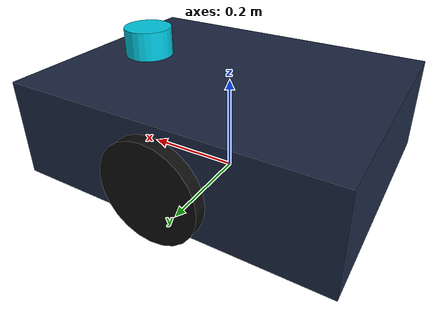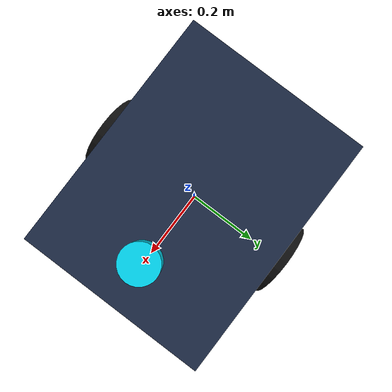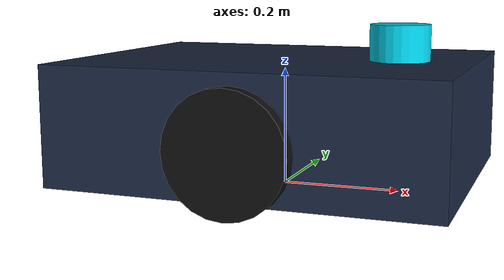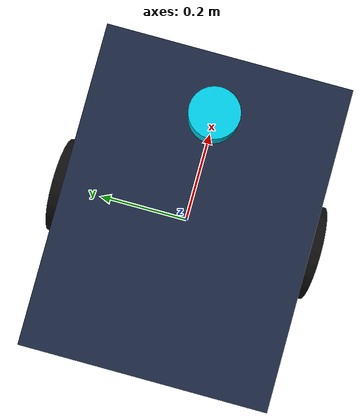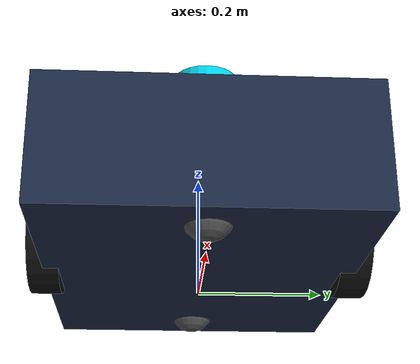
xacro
<?xml version="1.0"?>
<robot xmlns:xacro="http://www.ros.org/wiki/xacro" name="warehouse_amr">

  <xacro:arg name="robot_prefix" default="robot_1" />
  <xacro:property name="prefix" value="$(arg robot_prefix)" />

  <!-- Base footprint -->
  <link name="${prefix}/base_footprint"/>

  <!-- Base link -->
  <link name="${prefix}/base_link">
    <inertial>
      <mass value="25.0"/>
      <origin xyz="0 0 0.12" rpy="0 0 0"/>
      <inertia ixx="0.5" ixy="0" ixz="0" iyy="0.5" iyz="0" izz="0.8"/>
    </inertial>
    <visual>
      <origin xyz="0 0 0.12" rpy="0 0 0"/>
      <geometry>
        <box size="0.65 0.50 0.20"/>
      </geometry>
      <material name="chassis_mat">
        <color rgba="0.1 0.15 0.25 1.0"/>
      </material>
    </visual>
    <collision>
      <origin xyz="0 0 0.12" rpy="0 0 0"/>
      <geometry>
        <box size="0.65 0.50 0.20"/>
      </geometry>
    </collision>
  </link>

  <joint name="${prefix}/base_footprint_joint" type="fixed">
    <parent link="${prefix}/base_footprint"/>
    <child link="${prefix}/base_link"/>
    <origin xyz="0 0 0" rpy="0 0 0"/>
  </joint>

  <!-- Left wheel -->
  <link name="${prefix}/left_wheel">
    <inertial>
      <mass value="2.5"/>
      <origin xyz="0 0 0" rpy="0 0 0"/>
      <inertia ixx="0.01" ixy="0" ixz="0" iyy="0.01" iyz="0" izz="0.01"/>
    </inertial>
    <visual>
      <origin xyz="0 0 0" rpy="1.570796 0 0"/>
      <geometry>
        <cylinder radius="0.10" length="0.05"/>
      </geometry>
      <material name="wheel_mat">
        <color rgba="0.05 0.05 0.05 1.0"/>
      </material>
    </visual>
    <collision>
      <origin xyz="0 0 0" rpy="1.570796 0 0"/>
      <geometry>
        <cylinder radius="0.10" length="0.05"/>
      </geometry>
    </collision>
  </link>

  <joint name="${prefix}/left_wheel_joint" type="continuous">
    <parent link="${prefix}/base_link"/>
    <child link="${prefix}/left_wheel"/>
    <origin xyz="0 0.25 0.10" rpy="0 0 0"/>
    <axis xyz="0 1 0"/>
  </joint>

  <!-- Right wheel -->
  <link name="${prefix}/right_wheel">
    <inertial>
      <mass value="2.5"/>
      <origin xyz="0 0 0" rpy="0 0 0"/>
      <inertia ixx="0.01" ixy="0" ixz="0" iyy="0.01" iyz="0" izz="0.01"/>
    </inertial>
    <visual>
      <origin xyz="0 0 0" rpy="1.570796 0 0"/>
      <geometry>
        <cylinder radius="0.10" length="0.05"/>
      </geometry>
      <material name="wheel_mat">
        <color rgba="0.05 0.05 0.05 1.0"/>
      </material>
    </visual>
    <collision>
      <origin xyz="0 0 0" rpy="1.570796 0 0"/>
      <geometry>
        <cylinder radius="0.10" length="0.05"/>
      </geometry>
    </collision>
  </link>

  <joint name="${prefix}/right_wheel_joint" type="continuous">
    <parent link="${prefix}/base_link"/>
    <child link="${prefix}/right_wheel"/>
    <origin xyz="0 -0.25 0.10" rpy="0 0 0"/>
    <axis xyz="0 1 0"/>
  </joint>

  <!-- Caster front -->
  <link name="${prefix}/caster_front">
    <visual>
      <origin xyz="0 0 0" rpy="0 0 0"/>
      <geometry>
        <sphere radius="0.04"/>
      </geometry>
      <material name="caster_mat">
        <color rgba="0.3 0.3 0.3 1.0"/>
      </material>
    </visual>
    <collision>
      <origin xyz="0 0 0" rpy="0 0 0"/>
      <geometry>
        <sphere radius="0.04"/>
      </geometry>
    </collision>
  </link>

  <joint name="${prefix}/caster_front_joint" type="fixed">
    <parent link="${prefix}/base_link"/>
    <child link="${prefix}/caster_front"/>
    <origin xyz="0.25 0 0.04" rpy="0 0 0"/>
  </joint>

  <!-- Caster back -->
  <link name="${prefix}/caster_back">
    <visual>
      <origin xyz="0 0 0" rpy="0 0 0"/>
      <geometry>
        <sphere radius="0.04"/>
      </geometry>
      <material name="caster_mat">
        <color rgba="0.3 0.3 0.3 1.0"/>
      </material>
    </visual>
    <collision>
      <origin xyz="0 0 0" rpy="0 0 0"/>
      <geometry>
        <sphere radius="0.04"/>
      </geometry>
    </collision>
  </link>

  <joint name="${prefix}/caster_back_joint" type="fixed">
    <parent link="${prefix}/base_link"/>
    <child link="${prefix}/caster_back"/>
    <origin xyz="-0.25 0 0.04" rpy="0 0 0"/>
  </joint>

  <!-- 2D Laser Scanner -->
  <link name="${prefix}/laser_link">
    <visual>
      <origin xyz="0 0 0" rpy="0 0 0"/>
      <geometry>
        <cylinder radius="0.05" length="0.06"/>
      </geometry>
      <material name="lidar_mat">
        <color rgba="0.0 0.8 0.9 1.0"/>
      </material>
    </visual>
    <collision>
      <origin xyz="0 0 0" rpy="0 0 0"/>
      <geometry>
        <cylinder radius="0.05" length="0.06"/>
      </geometry>
    </collision>
  </link>

  <joint name="${prefix}/laser_joint" type="fixed">
    <parent link="${prefix}/base_link"/>
    <child link="${prefix}/laser_link"/>
    <origin xyz="0.20 0 0.25" rpy="0 0 0"/>
  </joint>

  <!-- IMU link -->
  <link name="${prefix}/imu_link"/>
  <joint name="${prefix}/imu_joint" type="fixed">
    <parent link="${prefix}/base_link"/>
    <child link="${prefix}/imu_link"/>
    <origin xyz="0 0 0.15" rpy="0 0 0"/>
  </joint>

  <!-- Gazebo Plugins -->
  <gazebo>
    <plugin filename="libignition-gazebo-diff-drive-system.so" name="ignition::gazebo::systems::DiffDrive">
      <left_joint>${prefix}/left_wheel_joint</left_joint>
      <right_joint>${prefix}/right_wheel_joint</right_joint>
      <wheel_separation>0.50</wheel_separation>
      <wheel_radius>0.10</wheel_radius>
      <odom_publish_frequency>50</odom_publish_frequency>
      <topic>/${prefix}/cmd_vel</topic>
      <odom_topic>/${prefix}/odom</odom_topic>
      <tf_topic>/${prefix}/tf</tf_topic>
      <frame_id>${prefix}/odom</frame_id>
      <child_frame_id>${prefix}/base_footprint</child_frame_id>
    </plugin>
  </gazebo>

</robot>
